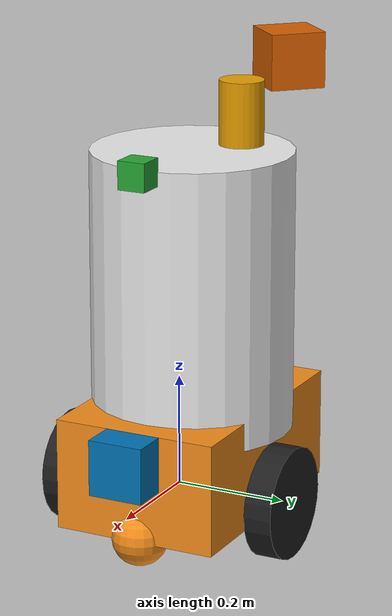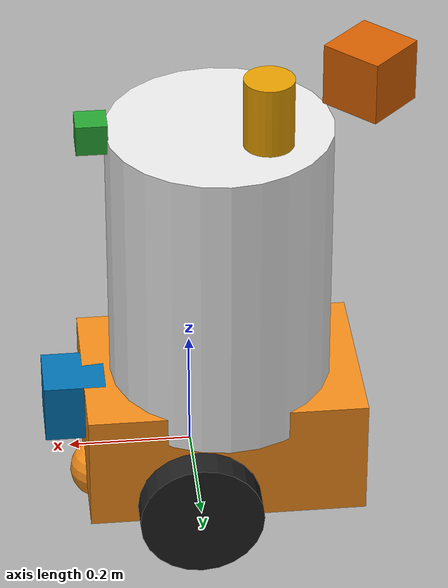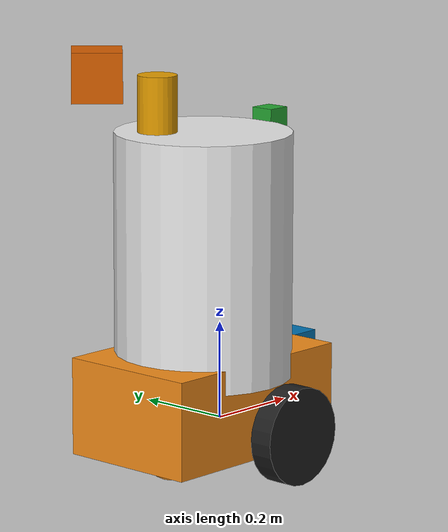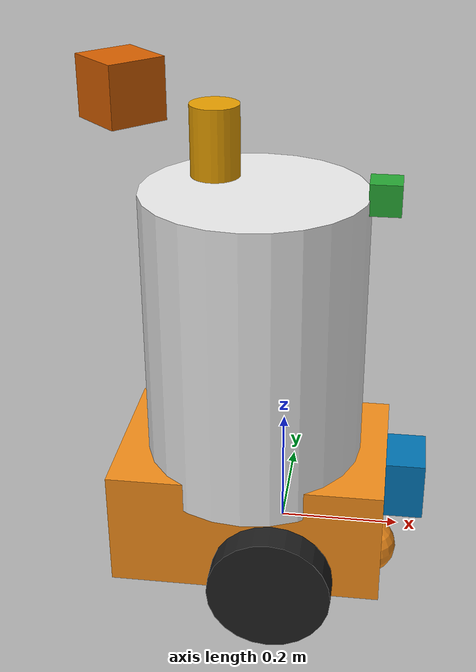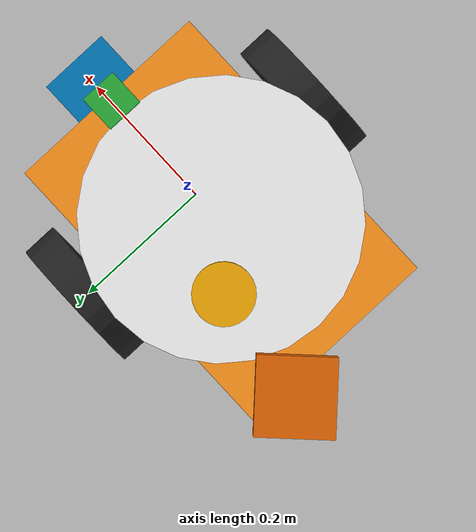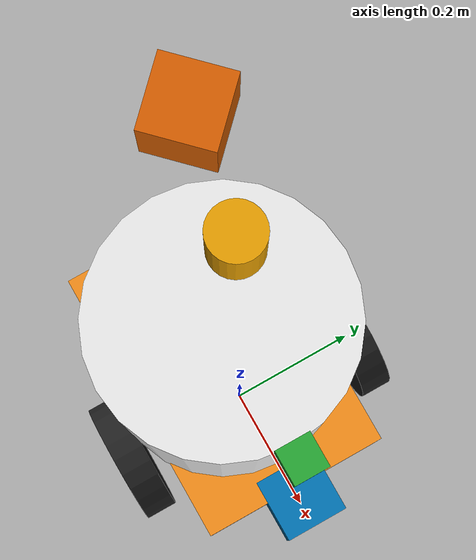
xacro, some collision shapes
<?xml version='1.0'?>

<robot name="myrobot" xmlns:xacro="http://www.ros.org/wiki/xacro">

  <xacro:property name="cameraSize" value="0.05"/>
  <xacro:property name="cameraMass" value="0.1"/>

  <xacro:include filename="$(find mybot_description)/urdf/mybot.gazebo" />
  <xacro:include filename="$(find mybot_description)/urdf/materials.xacro" />
  <xacro:include filename="$(find mybot_description)/urdf/macros.xacro" />

  <link name='base_link'>
    <pose>0 0 0.1 0 0 0</pose>

    <inertial>
      <mass value="15.0"/>
      <origin xyz="0.0 0 0.2" rpy=" 0 0 0"/>
      <inertia
          ixx="0.1" ixy="0" ixz="0"
          iyy="0.1" iyz="0"
          izz="0.1"
      />
    </inertial>

    <collision name='collision'>
      <geometry>
        <box size=".45 .3 .2"/>
      </geometry>
    </collision>

    <visual name='chassis_visual'>
      <origin xyz="-0.05 0 .05" rpy=" 0 0 0"/>
      <geometry>
        <box size=".45 .3 .2"/>
      </geometry>
    </visual>

    <collision name='caster_collision'>
      <origin xyz="-0.15 0 -0.15" rpy=" 0 0 0"/>
      <geometry>
        <sphere radius="0.05"/>
      </geometry>
      <surface>
        <friction>
          <ode>
            <mu>0</mu>
            <mu2>0</mu2>
            <slip1>1.0</slip1>
            <slip2>1.0</slip2>
          </ode>
        </friction>
      </surface>
    </collision>

    <visual name='caster_visual'>
      <origin xyz="-0.15 0 -0.05" rpy=" 0 0 0"/>
      <geometry>
        <sphere radius="0.05"/>
      </geometry>
    </visual>

    <collision name='caster_front_collision'>
      <origin xyz="0.15 0 -0.05" rpy=" 0 0 0"/>
      <geometry>
        <sphere radius="0.05"/>
      </geometry>
      <surface>
        <friction>3.1415
          <ode>
            <mu>0</mu>
            <mu2>0</mu2>
            <slip1>1.0</slip1>
            <slip2>1.0</slip2>
          </ode>
        </friction>
      </surface>
    </collision>

    <visual name='caster_front_visual'>
      <origin xyz="0.15 0 -.05" rpy=" 0 0 0"/>
      <geometry>
        <sphere radius="0.05"/>
      </geometry>
    </visual>

  </link>

  <link name="left_wheel">
    <!--origin xyz="0.1 0.13 0.1" rpy="0 1.5707 1.5707"/-->
    <collision name="collision">
      <origin xyz="0 0 0" rpy="0 1.5707 1.5707"/>
      <geometry>
        <cylinder radius="0.1" length="0.05"/>
      </geometry>
    </collision>

    <visual name="left_wheel_visual">
      <origin xyz="0 0 0" rpy="0 1.5707 1.5707"/>
      <geometry>
        <cylinder radius="0.1" length="0.05"/>
      </geometry>
      <material name="black"/>
    </visual>

    <inertial>
      <origin xyz="0 0 0" rpy="0 1.5707 1.5707"/>
      <mass value="5"/>
      <inertia
        ixx=".1" ixy="0.0" ixz="0.0"
        iyy=".1" iyz="0.0"
        izz=".1"/>
    </inertial>

  </link>

  <link name="right_wheel">
    <!--origin xyz="0.1 -0.13 0.1" rpy="0 1.5707 1.5707"/-->
    <collision name="collision">
      <origin xyz="0 0 0" rpy="0 1.5707 1.5707"/>
      <geometry>
        <cylinder radius="0.1" length="0.05"/>
      </geometry>
    </collision>
    <visual name="right_wheel_visual">
      <origin xyz="0 0 0" rpy="0 1.5707 1.5707"/>
      <geometry>
        <cylinder radius="0.1" length="0.05"/>
      </geometry>camera_link
      <material name="black"/>
    </visual>
    <inertial>
      <origin xyz="0 0 0" rpy="0 1.5707 1.5707"/>
      <mass value="5"/>
      <inertia
        ixx=".1" ixy="0.0" ixz="0.0"
        iyy=".1" iyz="0.0"
        izz=".1"/>
    </inertial>
  </link>

  <joint type="continuous" name="left_wheel_hinge">
    <origin xyz="0 0.2 0" rpy="0 0 0"/>
    <!--origin xyz="0.1 0.13 0" rpy="0 1.5707 1.5707"/-->
    <child link="left_wheel"/>
    <parent link="base_link"/>
    <axis xyz="0 1 0" rpy="0 0 0"/>
    <limit effort="10000" velocity="1000"/>
    <joint_properties damping="1.0" friction="1.0"/>
  </joint>

  <joint type="continuous" name="right_wheel_hinge">
    <origin xyz="0 -0.2 0" rpy="0 0 0"/>
    <!--origin xyz="0.1 -0.13 0" rpy="0 1.5707 1.5707"/-->
    <child link="right_wheel"/>
    <parent link="base_link"/>
    <axis xyz="0 1 0" rpy="0 0 0"/>
    <limit effort="10000" velocity="1000"/>
    <joint_properties damping="2.0" friction="5.0"/>
  </joint>

  <link name="camera_link">
    <collision>
      <origin xyz="-0.1 0 0" rpy="0 0 0"/>
      <geometry>
        <box size="${cameraSize} ${cameraSize} ${cameraSize}"/>
      </geometry>
    </collision>

    <visual>
      <origin xyz="-.1 0 0" rpy="0 0 0"/>
      <geometry>
        <box size="${cameraSize} ${cameraSize} ${cameraSize}"/>
      </geometry>
      <material name="green"/>
    </visual>

    <inertial>
      <mass value="${cameraMass}" />
      <origin xyz="0 0 0" rpy="0 0 0"/>
      <box_inertia m="${cameraMass}" x="${cameraSize}" y="${cameraSize}" z="${cameraSize}" />
      <inertia ixx="1e-6" ixy="0" ixz="0" iyy="1e-6" iyz="0" izz="1e-6" />
    </inertial>
  </link>

  <joint name="camera_joint" type="fixed">
    <axis xyz="-0.1 .14 0" />
    <origin xyz=".25 0 0.6" rpy="0 0 0"/>
    <parent link="base_link"/>
    <child link="camera_link"/>
  </joint>

  <!-- Hokuyo Laser -->
  <link name="laser1">
    <collision>
      <origin xyz="0 0 0" rpy="0 0 0"/>
      <geometry>
    <box size="0.1 0.1 0.1"/>
      </geometry>
    </collision>

    <visual>
      <origin xyz="0 0 -.1" rpy="0 0 0"/>
      <geometry>
        <mesh filename="package://mybot_description/meshes/hokuyo.dae"/>
      </geometry>
    </visual>

    <inertial>
      <mass value="1e-5" />
      <origin xyz="0 0 0" rpy="0 0 0"/>
      <inertia ixx="1e-6" ixy="0" ixz="0" iyy="1e-6" iyz="0" izz="1e-6" />
    </inertial>
  </link>

  <joint name="hokuyo_joint" type="fixed">
    <axis xyz="0 1 0" />
    <origin xyz=".19 0 .1" rpy="0 0 0"/>
    <parent link="base_link"/>
    <child link="laser1"/>
  </joint>

  <!-- Top Hokuyo Laser -->
  <link name="laser2">
    <collision>
      <origin xyz="0 0 0" rpy="0 0 0"/>
      <geometry>
    <box size="0.1 0.1 0.1"/>
      </geometry>
    </collision>

    <visual>
      <origin xyz="0 0 0" rpy="0 0 0"/>
      <geometry>
        <mesh filename="package://mybot_description/meshes/hokuyo.dae"/>
      </geometry>
    </visual>

    <inertial>
      <mass value="1e-5" />
      <origin xyz="0 0 0" rpy="0 0 0"/>
      <inertia ixx="1e-6" ixy="0" ixz="0" iyy="1e-6" iyz="0" izz="1e-6" />
    </inertial>
  </link>
  <joint name="hokuyo_joint2" type="fixed">
    <axis xyz="0 0 0" />
    <origin xyz="-0.27 0.08 .73" rpy="0 0 2.35619"/>
    <parent link="base_link"/>
    <child link="laser2"/>
  </joint>

  <link name="topcover">
    <!--origin xyz="0.1 -0.13 0.1" rpy="0 1.5707 1.5707"/-->
    <collision name="collision">
      <origin xyz="0 0 0" rpy=" 0 0 0"/>
      <geometry>
        <cylinder length="0.9" radius="0.18"/>
      </geometry>
    </collision>

    <visual name="topcover_visual">
      <origin xyz="0 0 0.15" rpy=" 0 0 0"/>
      <geometry>
        <cylinder length="0.5" radius="0.18"/>
      </geometry>
      <material name="white"/>
    </visual>
  </link>

  <joint name="topcover_joint" type="fixed">
    <axis xyz="0 1 0" />
    <origin xyz="-0.05 0 .2" rpy="0 0 0"/>
    <parent link="base_link"/>
    <child link="topcover"/>
  </joint>

  <!-- RosAria/sonar -->
  <link name="sonar">
    <!--origin xyz="0.1 -0.13 0.1" rpy="0 1.5707 1.5707"/-->
    <collision name="collision">
      <origin xyz="0 0 0" rpy=" 0 0 0"/>
      <geometry>
        <box size="${cameraSize} ${cameraSize} ${cameraSize}"/>
      </geometry>
    </collision>

    <visual name="sonar_visual">
      <origin xyz="0 0 0" rpy=" 0 0 0"/>
      <geometry>
        <box size="${cameraSize} ${cameraSize} ${cameraSize}"/>
      </geometry>
      <material name="yellow"/>
    </visual>
  </link>

  <joint name="sonar_joint" type="fixed">
    <axis xyz="0 0 0" />
    <origin xyz="0 0 0.1" rpy="0 0 0"/>
    <parent link="base_link"/>
    <child link="sonar"/>
  </joint>

  <!-- top velodyne Laser -->

  <link name="xsens">
    <collision>
      <origin xyz="0 0 0" rpy="0 0 0"/>
      <geometry>
    <box size="0.1 0.1 0.4"/>
      </geometry>
    </collision>

    <visual>
      <origin xyz="0 0 0" rpy="0 0 0"/>
      <geometry>
        <cylinder length="0.17" radius="0.04"/>
      </geometry>
    </visual>

    <inertial>
      <mass value="1e-5" />
      <origin xyz="0 0 0" rpy="0 0 0"/>
      <inertia ixx="1e-6" ixy="0" ixz="0" iyy="1e-6" iyz="0" izz="1e-6" />
    </inertial>
  </link>
  <joint name="xsens_joint" type="fixed">
    <axis xyz="0 0 0" />
    <origin xyz="-0.12 0.06 .63" rpy="0 0 3.14159"/>
    <parent link="base_link"/>
    <child link="xsens"/>
  </joint>

</robot>
